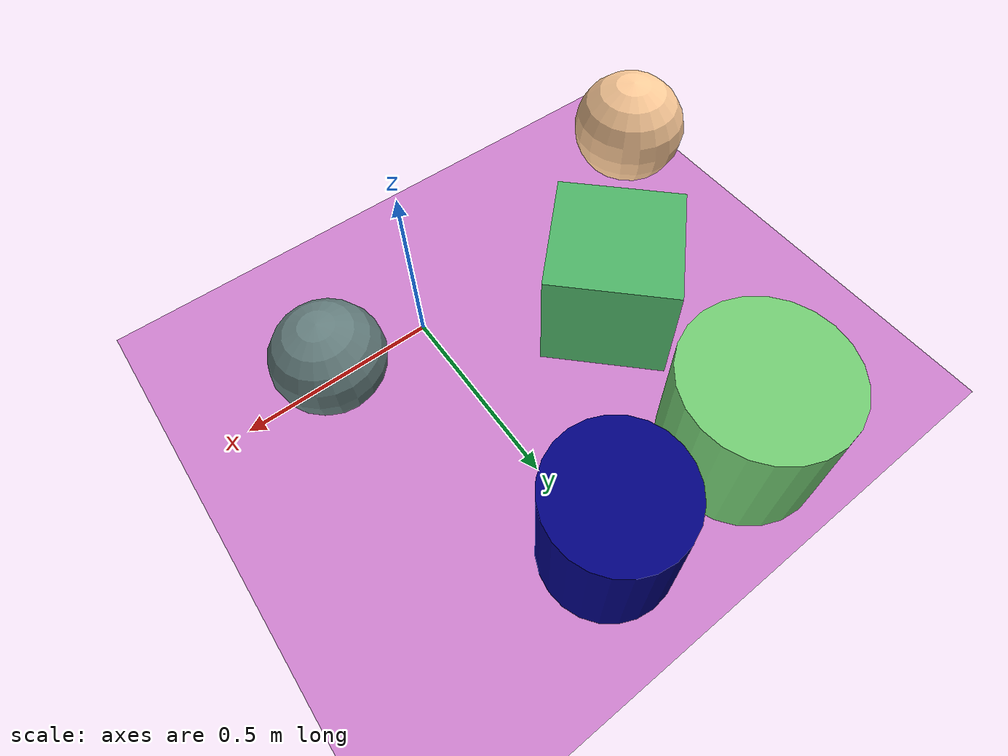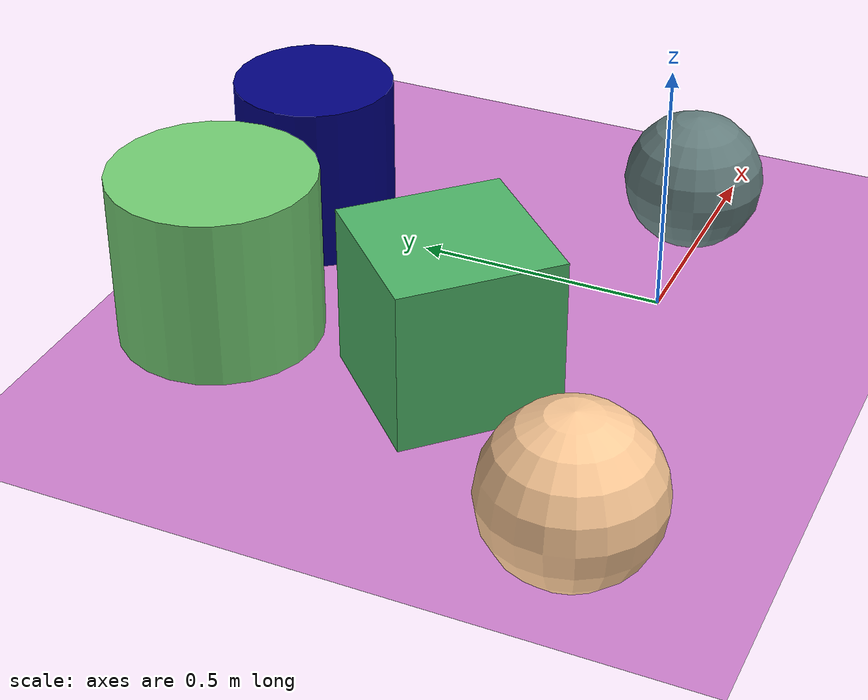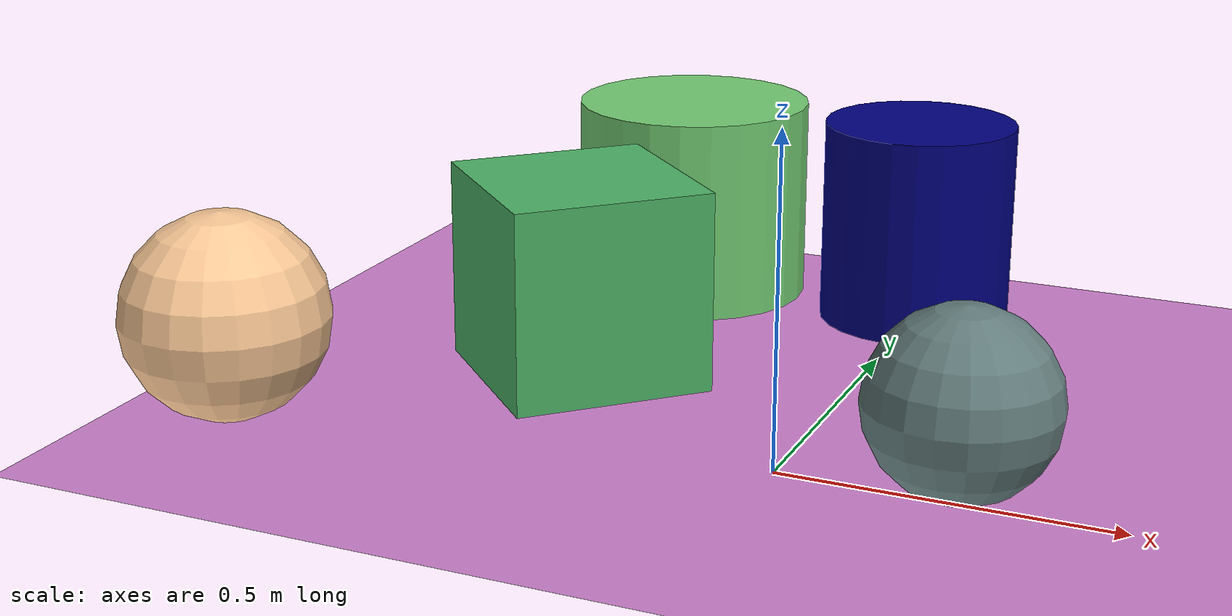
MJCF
<mujoco>
   <asset>
<texture type="skybox" builtin="gradient" rgb1="0.3 0.8 0.9" rgb2="0.2 0.6 0.1" width="256" height="256"/>
<texture name="gradient_0" builtin="gradient" rgb1="0.8 0.7 0.9" rgb2="0.1 0.9 0.0" width="200" height="200"/>
<texture name="gradient_1" builtin="gradient" rgb1="0.3 0.8 0.2" rgb2="0.3 0.6 0.6" width="200" height="200"/>
<texture name="checker_2" builtin="checker" rgb1="0.3 0.1 0.7" rgb2="0.5 0.9 0.3" width="200" height="200"/>
<texture name="flat_3" builtin="flat" rgb1="0.0 0.0 0.5" rgb2="0.0 0.0 0.5"  width="200" height="200"/>
<texture name="checker_4" builtin="checker" rgb1="1.0 0.7 0.8" rgb2="1.0 0.9 0.4" width="200" height="200"/><material name="gradient_0_mat" reflectance="0" texture="gradient_0" texuniform="true"/>
<material name="gradient_1_mat" reflectance="0" texture="gradient_1" texuniform="true"/>
<material name="checker_2_mat" reflectance="0" texrepeat="9 9" texture="checker_2" texuniform="false" />
<material name="flat_3_mat" reflectance="0" texture="flat_3" texuniform="true"/>
<material name="checker_4_mat" reflectance="0" texrepeat="9 9" texture="checker_4" texuniform="false" />
   </asset>

   <worldbody>
      <light diffuse=".9 .9 .9" pos="0 0 3" dir="0 0 -1"/>
     <geom type="plane" size="1 1 0.1" rgba="0.8 0.5 0.8 1"/>
<geom type="cylinder" pos="-0.42 0.74 0.17" size="0.2 0.17 0.17" material="gradient_0_mat" euler="0 0 45" />
<geom type="box" pos="-0.42 0.26 0.16" size="0.16 0.16 0.16" material="gradient_1_mat" euler="0 0 45" />
<geom type="sphere" pos="0.26 0.02 0.14" size="0.14 0.14 0.14" material="checker_2_mat" euler="0 0 72" />
<geom type="cylinder" pos="-0.01 0.74 0.17" size="0.16 0.17 0.17" material="flat_3_mat" euler="0 0 29" />
<geom type="sphere" pos="-0.82 -0.13 0.16" size="0.16 0.16 0.16" material="checker_4_mat" euler="0 0 77" /><camera euler="60 0 180" fovy="60" name="camera1" pos="-0.2 -1.5 1"></camera>   </worldbody>
</mujoco>
